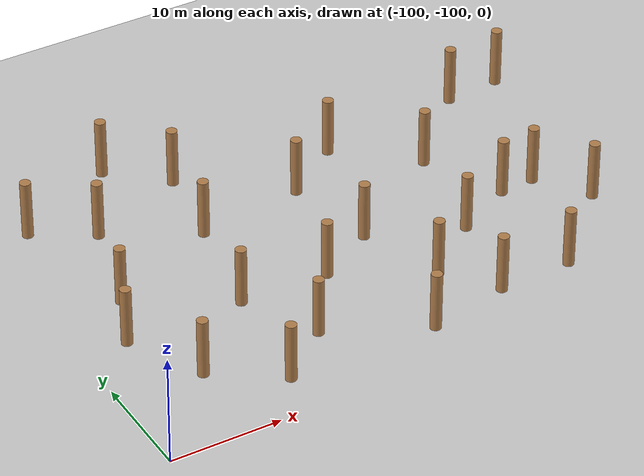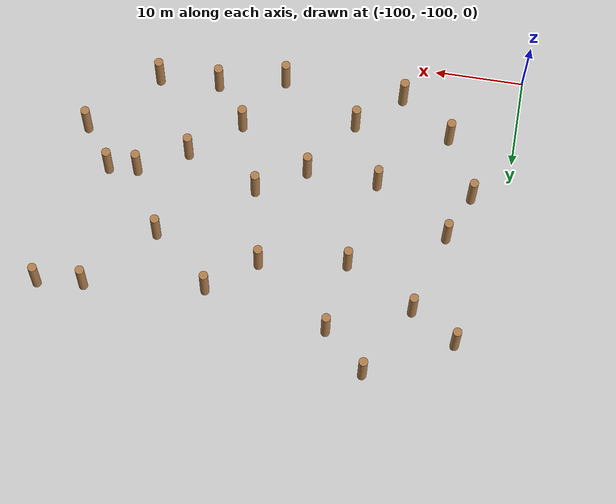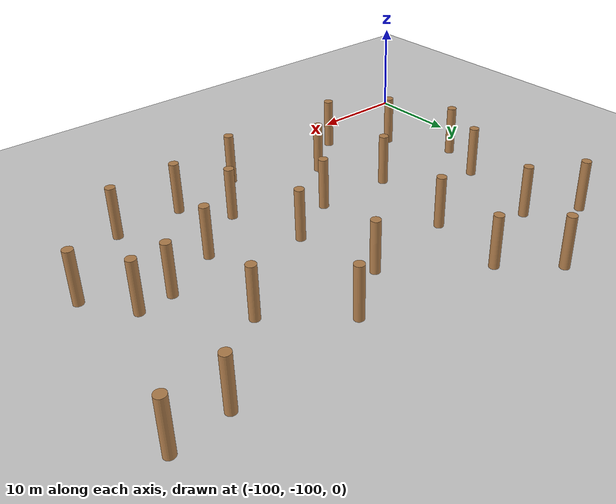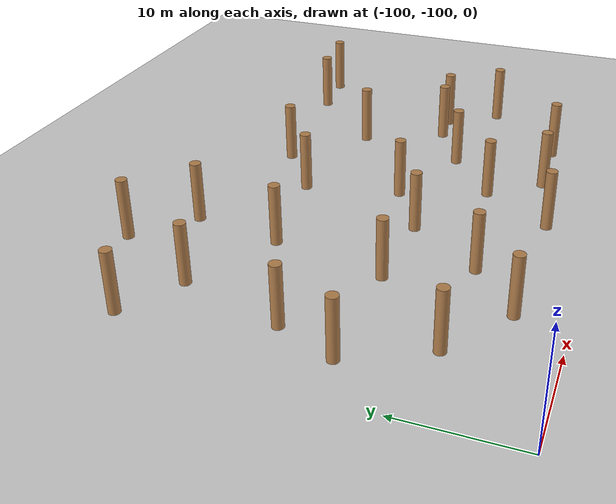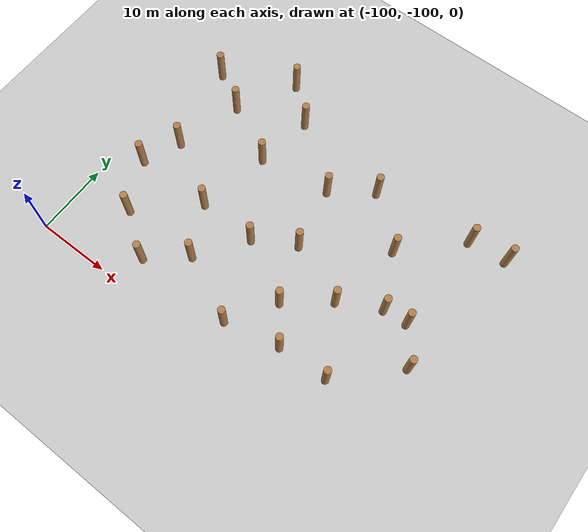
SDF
<sdf version="1.6">
 <world name="default">
  <model name="ground_plane">
   <static>1</static>
   <link name="link">
    <collision name="collision">
     <geometry><plane><normal>0 0 1</normal><size>100 100</size></plane></geometry>
     <surface><friction><ode><mu>100</mu><mu2>50</mu2></ode></friction></surface>
    </collision>
    <visual name="visual">
     <cast_shadows>0</cast_shadows>
     <geometry><plane><normal>0 0 1</normal><size>100 100</size></plane></geometry>
     <material>
      <script><uri>file://media/materials/scripts/gazebo.material</uri><name>Gazebo/Grey</name></script>
     </material>
    </visual>
   </link>
  </model>
  <model name="WoodPillars_11">
   <link name="link">
    <inertial>
     <mass>1</mass>
     <inertia><ixx>0.145833</ixx><ixy>0</ixy><ixz>0</ixz><iyy>0.145833</iyy><iyz>0</iyz><izz>0.125</izz></inertia>
    </inertial>
    <visual name="visual">
     <geometry><cylinder><radius>0.5</radius><length>5.50507</length></cylinder></geometry>
     <material>
      <script><name>Gazebo/Wood</name><uri>file://media/materials/scripts/gazebo.material</uri></script>
     </material>
    </visual>
    <collision name="collision">
     <geometry><cylinder><radius>0.5</radius><length>5.50507</length></cylinder></geometry>
     <surface>
      <friction>
       <ode><mu>1</mu><mu2>1</mu2><fdir1>0 0 0</fdir1><slip1>0</slip1><slip2>0</slip2></ode>
       <torsional>
        <coefficient>1</coefficient>
        <patch_radius>0</patch_radius>
        <surface_radius>0</surface_radius>
        <use_patch_radius>1</use_patch_radius>
        <ode><slip>0</slip></ode>
       </torsional>
      </friction>
      <bounce><restitution_coefficient>0</restitution_coefficient><threshold>1e+06</threshold></bounce>
      <contact>
       <collide_without_contact>0</collide_without_contact>
       <collide_without_contact_bitmask>1</collide_without_contact_bitmask>
       <collide_bitmask>1</collide_bitmask>
       <ode>
        <soft_cfm>0</soft_cfm>
        <soft_erp>0.2</soft_erp>
        <kp>1e+13</kp>
        <kd>1</kd>
        <max_vel>0.01</max_vel>
        <min_depth>0</min_depth>
       </ode>
       <bullet>
        <split_impulse>1</split_impulse>
        <split_impulse_penetration_threshold>-0.01</split_impulse_penetration_threshold>
        <soft_cfm>0</soft_cfm>
        <soft_erp>0.2</soft_erp>
        <kp>1e+13</kp>
        <kd>1</kd>
       </bullet>
      </contact>
     </surface>
    </collision>
   </link>
   <link name="link_clone">
    <inertial>
     <mass>1</mass>
     <inertia><ixx>0.145833</ixx><ixy>0</ixy><ixz>0</ixz><iyy>0.145833</iyy><iyz>0</iyz><izz>0.125</izz></inertia>
    </inertial>
    <pose>17.6954 -2.91348 -2e-06 0 -0 -0.001289</pose>
    <visual name="visual">
     <geometry><cylinder><radius>0.5</radius><length>5.50507</length></cylinder></geometry>
     <material>
      <script><name>Gazebo/Wood</name><uri>file://media/materials/scripts/gazebo.material</uri></script>
      <shader type="pixel"/>
     </material>
    </visual>
    <collision name="collision">
     <geometry><cylinder><radius>0.5</radius><length>5.50507</length></cylinder></geometry>
     <surface>
      <friction>
       <ode><mu>1</mu><mu2>1</mu2><fdir1>0 0 0</fdir1><slip1>0</slip1><slip2>0</slip2></ode>
       <torsional>
        <coefficient>1</coefficient>
        <patch_radius>0</patch_radius>
        <surface_radius>0</surface_radius>
        <use_patch_radius>1</use_patch_radius>
        <ode><slip>0</slip></ode>
       </torsional>
      </friction>
      <bounce><restitution_coefficient>0</restitution_coefficient><threshold>1e+06</threshold></bounce>
      <contact>
       <collide_without_contact>0</collide_without_contact>
       <collide_without_contact_bitmask>1</collide_without_contact_bitmask>
       <collide_bitmask>1</collide_bitmask>
       <ode>
        <soft_cfm>0</soft_cfm>
        <soft_erp>0.2</soft_erp>
        <kp>1e+13</kp>
        <kd>1</kd>
        <max_vel>0.01</max_vel>
        <min_depth>0</min_depth>
       </ode>
       <bullet>
        <split_impulse>1</split_impulse>
        <split_impulse_penetration_threshold>-0.01</split_impulse_penetration_threshold>
        <soft_cfm>0</soft_cfm>
        <soft_erp>0.2</soft_erp>
        <kp>1e+13</kp>
        <kd>1</kd>
       </bullet>
      </contact>
     </surface>
    </collision>
   </link>
   <link name="link_clone_12">
    <inertial>
     <mass>1</mass>
     <inertia><ixx>0.145833</ixx><ixy>0</ixy><ixz>0</ixz><iyy>0.145833</iyy><iyz>0</iyz><izz>0.125</izz></inertia>
    </inertial>
    <pose>36.6063 2.3916 -3e-06 0 -0 -0.001289</pose>
    <visual name="visual">
     <geometry><cylinder><radius>0.5</radius><length>5.50507</length></cylinder></geometry>
     <material>
      <script><name>Gazebo/Wood</name><uri>file://media/materials/scripts/gazebo.material</uri></script>
      <shader type="pixel"/>
     </material>
    </visual>
    <collision name="collision">
     <geometry><cylinder><radius>0.5</radius><length>5.50507</length></cylinder></geometry>
     <surface>
      <friction>
       <ode><mu>1</mu><mu2>1</mu2><fdir1>0 0 0</fdir1><slip1>0</slip1><slip2>0</slip2></ode>
       <torsional>
        <coefficient>1</coefficient>
        <patch_radius>0</patch_radius>
        <surface_radius>0</surface_radius>
        <use_patch_radius>1</use_patch_radius>
        <ode><slip>0</slip></ode>
       </torsional>
      </friction>
      <bounce><restitution_coefficient>0</restitution_coefficient><threshold>1e+06</threshold></bounce>
      <contact>
       <collide_without_contact>0</collide_without_contact>
       <collide_without_contact_bitmask>1</collide_without_contact_bitmask>
       <collide_bitmask>1</collide_bitmask>
       <ode>
        <soft_cfm>0</soft_cfm>
        <soft_erp>0.2</soft_erp>
        <kp>1e+13</kp>
        <kd>1</kd>
        <max_vel>0.01</max_vel>
        <min_depth>0</min_depth>
       </ode>
       <bullet>
        <split_impulse>1</split_impulse>
        <split_impulse_penetration_threshold>-0.01</split_impulse_penetration_threshold>
        <soft_cfm>0</soft_cfm>
        <soft_erp>0.2</soft_erp>
        <kp>1e+13</kp>
        <kd>1</kd>
       </bullet>
      </contact>
     </surface>
    </collision>
   </link>
   <link name="link_clone_13">
    <inertial>
     <mass>1</mass>
     <inertia><ixx>0.145833</ixx><ixy>0</ixy><ixz>0</ixz><iyy>0.145833</iyy><iyz>0</iyz><izz>0.125</izz></inertia>
    </inertial>
    <pose>32.2715 -23.3528 -3e-06 0 -0 -0.001289</pose>
    <visual name="visual">
     <geometry><cylinder><radius>0.5</radius><length>5.50507</length></cylinder></geometry>
     <material>
      <script><name>Gazebo/Wood</name><uri>file://media/materials/scripts/gazebo.material</uri></script>
      <shader type="pixel"/>
     </material>
    </visual>
    <collision name="collision">
     <geometry><cylinder><radius>0.5</radius><length>5.50507</length></cylinder></geometry>
     <surface>
      <friction>
       <ode><mu>1</mu><mu2>1</mu2><fdir1>0 0 0</fdir1><slip1>0</slip1><slip2>0</slip2></ode>
       <torsional>
        <coefficient>1</coefficient>
        <patch_radius>0</patch_radius>
        <surface_radius>0</surface_radius>
        <use_patch_radius>1</use_patch_radius>
        <ode><slip>0</slip></ode>
       </torsional>
      </friction>
      <bounce><restitution_coefficient>0</restitution_coefficient><threshold>1e+06</threshold></bounce>
      <contact>
       <collide_without_contact>0</collide_without_contact>
       <collide_without_contact_bitmask>1</collide_without_contact_bitmask>
       <collide_bitmask>1</collide_bitmask>
       <ode>
        <soft_cfm>0</soft_cfm>
        <soft_erp>0.2</soft_erp>
        <kp>1e+13</kp>
        <kd>1</kd>
        <max_vel>0.01</max_vel>
        <min_depth>0</min_depth>
       </ode>
       <bullet>
        <split_impulse>1</split_impulse>
        <split_impulse_penetration_threshold>-0.01</split_impulse_penetration_threshold>
        <soft_cfm>0</soft_cfm>
        <soft_erp>0.2</soft_erp>
        <kp>1e+13</kp>
        <kd>1</kd>
       </bullet>
      </contact>
     </surface>
    </collision>
   </link>
   <link name="link_clone_14">
    <inertial>
     <mass>1</mass>
     <inertia><ixx>0.145833</ixx><ixy>0</ixy><ixz>0</ixz><iyy>0.145833</iyy><iyz>0</iyz><izz>0.125</izz></inertia>
    </inertial>
    <pose>9.31461 -20.9997 -1e-06 0 -0 -0.001289</pose>
    <visual name="visual">
     <geometry><cylinder><radius>0.5</radius><length>5.50507</length></cylinder></geometry>
     <material>
      <script><name>Gazebo/Wood</name><uri>file://media/materials/scripts/gazebo.material</uri></script>
      <shader type="pixel"/>
     </material>
    </visual>
    <collision name="collision">
     <geometry><cylinder><radius>0.5</radius><length>5.50507</length></cylinder></geometry>
     <surface>
      <friction>
       <ode><mu>1</mu><mu2>1</mu2><fdir1>0 0 0</fdir1><slip1>0</slip1><slip2>0</slip2></ode>
       <torsional>
        <coefficient>1</coefficient>
        <patch_radius>0</patch_radius>
        <surface_radius>0</surface_radius>
        <use_patch_radius>1</use_patch_radius>
        <ode><slip>0</slip></ode>
       </torsional>
      </friction>
      <bounce><restitution_coefficient>0</restitution_coefficient><threshold>1e+06</threshold></bounce>
      <contact>
       <collide_without_contact>0</collide_without_contact>
       <collide_without_contact_bitmask>1</collide_without_contact_bitmask>
       <collide_bitmask>1</collide_bitmask>
       <ode>
        <soft_cfm>0</soft_cfm>
        <soft_erp>0.2</soft_erp>
        <kp>1e+13</kp>
        <kd>1</kd>
        <max_vel>0.01</max_vel>
        <min_depth>0</min_depth>
       </ode>
       <bullet>
        <split_impulse>1</split_impulse>
        <split_impulse_penetration_threshold>-0.01</split_impulse_penetration_threshold>
        <soft_cfm>0</soft_cfm>
        <soft_erp>0.2</soft_erp>
        <kp>1e+13</kp>
        <kd>1</kd>
       </bullet>
      </contact>
     </surface>
    </collision>
   </link>
   <link name="link_clone_15">
    <inertial>
     <mass>1</mass>
     <inertia><ixx>0.145833</ixx><ixy>0</ixy><ixz>0</ixz><iyy>0.145833</iyy><iyz>0</iyz><izz>0.125</izz></inertia>
    </inertial>
    <pose>17.9894 -25.1945 -2e-06 0 -0 -0.001289</pose>
    <visual name="visual">
     <geometry><cylinder><radius>0.5</radius><length>5.50507</length></cylinder></geometry>
     <material>
      <script><name>Gazebo/Wood</name><uri>file://media/materials/scripts/gazebo.material</uri></script>
      <shader type="pixel"/>
     </material>
    </visual>
    <collision name="collision">
     <geometry><cylinder><radius>0.5</radius><length>5.50507</length></cylinder></geometry>
     <surface>
      <friction>
       <ode><mu>1</mu><mu2>1</mu2><fdir1>0 0 0</fdir1><slip1>0</slip1><slip2>0</slip2></ode>
       <torsional>
        <coefficient>1</coefficient>
        <patch_radius>0</patch_radius>
        <surface_radius>0</surface_radius>
        <use_patch_radius>1</use_patch_radius>
        <ode><slip>0</slip></ode>
       </torsional>
      </friction>
      <bounce><restitution_coefficient>0</restitution_coefficient><threshold>1e+06</threshold></bounce>
      <contact>
       <collide_without_contact>0</collide_without_contact>
       <collide_without_contact_bitmask>1</collide_without_contact_bitmask>
       <collide_bitmask>1</collide_bitmask>
       <ode>
        <soft_cfm>0</soft_cfm>
        <soft_erp>0.2</soft_erp>
        <kp>1e+13</kp>
        <kd>1</kd>
        <max_vel>0.01</max_vel>
        <min_depth>0</min_depth>
       </ode>
       <bullet>
        <split_impulse>1</split_impulse>
        <split_impulse_penetration_threshold>-0.01</split_impulse_penetration_threshold>
        <soft_cfm>0</soft_cfm>
        <soft_erp>0.2</soft_erp>
        <kp>1e+13</kp>
        <kd>1</kd>
       </bullet>
      </contact>
     </surface>
    </collision>
   </link>
   <link name="link_clone_16">
    <inertial>
     <mass>1</mass>
     <inertia><ixx>0.145833</ixx><ixy>0</ixy><ixz>0</ixz><iyy>0.145833</iyy><iyz>0</iyz><izz>0.125</izz></inertia>
    </inertial>
    <pose>32.9662 -11.9429 -3e-06 0 -0 -0.001289</pose>
    <visual name="visual">
     <geometry><cylinder><radius>0.5</radius><length>5.50507</length></cylinder></geometry>
     <material>
      <script><name>Gazebo/Wood</name><uri>file://media/materials/scripts/gazebo.material</uri></script>
      <shader type="pixel"/>
     </material>
    </visual>
    <collision name="collision">
     <geometry><cylinder><radius>0.5</radius><length>5.50507</length></cylinder></geometry>
     <surface>
      <friction>
       <ode><mu>1</mu><mu2>1</mu2><fdir1>0 0 0</fdir1><slip1>0</slip1><slip2>0</slip2></ode>
       <torsional>
        <coefficient>1</coefficient>
        <patch_radius>0</patch_radius>
        <surface_radius>0</surface_radius>
        <use_patch_radius>1</use_patch_radius>
        <ode><slip>0</slip></ode>
       </torsional>
      </friction>
      <bounce><restitution_coefficient>0</restitution_coefficient><threshold>1e+06</threshold></bounce>
      <contact>
       <collide_without_contact>0</collide_without_contact>
       <collide_without_contact_bitmask>1</collide_without_contact_bitmask>
       <collide_bitmask>1</collide_bitmask>
       <ode>
        <soft_cfm>0</soft_cfm>
        <soft_erp>0.2</soft_erp>
        <kp>1e+13</kp>
        <kd>1</kd>
        <max_vel>0.01</max_vel>
        <min_depth>0</min_depth>
       </ode>
       <bullet>
        <split_impulse>1</split_impulse>
        <split_impulse_penetration_threshold>-0.01</split_impulse_penetration_threshold>
        <soft_cfm>0</soft_cfm>
        <soft_erp>0.2</soft_erp>
        <kp>1e+13</kp>
        <kd>1</kd>
       </bullet>
      </contact>
     </surface>
    </collision>
   </link>
   <link name="link_clone_17">
    <inertial>
     <mass>1</mass>
     <inertia><ixx>0.145833</ixx><ixy>0</ixy><ixz>0</ixz><iyy>0.145833</iyy><iyz>0</iyz><izz>0.125</izz></inertia>
    </inertial>
    <pose>19.3784 -11.4604 -2e-06 0 -0 -0.001289</pose>
    <visual name="visual">
     <geometry><cylinder><radius>0.5</radius><length>5.50507</length></cylinder></geometry>
     <material>
      <script><name>Gazebo/Wood</name><uri>file://media/materials/scripts/gazebo.material</uri></script>
      <shader type="pixel"/>
     </material>
    </visual>
    <collision name="collision">
     <geometry><cylinder><radius>0.5</radius><length>5.50507</length></cylinder></geometry>
     <surface>
      <friction>
       <ode><mu>1</mu><mu2>1</mu2><fdir1>0 0 0</fdir1><slip1>0</slip1><slip2>0</slip2></ode>
       <torsional>
        <coefficient>1</coefficient>
        <patch_radius>0</patch_radius>
        <surface_radius>0</surface_radius>
        <use_patch_radius>1</use_patch_radius>
        <ode><slip>0</slip></ode>
       </torsional>
      </friction>
      <bounce><restitution_coefficient>0</restitution_coefficient><threshold>1e+06</threshold></bounce>
      <contact>
       <collide_without_contact>0</collide_without_contact>
       <collide_without_contact_bitmask>1</collide_without_contact_bitmask>
       <collide_bitmask>1</collide_bitmask>
       <ode>
        <soft_cfm>0</soft_cfm>
        <soft_erp>0.2</soft_erp>
        <kp>1e+13</kp>
        <kd>1</kd>
        <max_vel>0.01</max_vel>
        <min_depth>0</min_depth>
       </ode>
       <bullet>
        <split_impulse>1</split_impulse>
        <split_impulse_penetration_threshold>-0.01</split_impulse_penetration_threshold>
        <soft_cfm>0</soft_cfm>
        <soft_erp>0.2</soft_erp>
        <kp>1e+13</kp>
        <kd>1</kd>
       </bullet>
      </contact>
     </surface>
    </collision>
   </link>
   <link name="link_clone_18">
    <inertial>
     <mass>1</mass>
     <inertia><ixx>0.145833</ixx><ixy>0</ixy><ixz>0</ixz><iyy>0.145833</iyy><iyz>0</iyz><izz>0.125</izz></inertia>
    </inertial>
    <pose>9.1573 3.67739 -1e-06 0 -0 -0.001289</pose>
    <visual name="visual">
     <geometry><cylinder><radius>0.5</radius><length>5.50507</length></cylinder></geometry>
     <material>
      <script><name>Gazebo/Wood</name><uri>file://media/materials/scripts/gazebo.material</uri></script>
      <shader type="pixel"/>
     </material>
    </visual>
    <collision name="collision">
     <geometry><cylinder><radius>0.5</radius><length>5.50507</length></cylinder></geometry>
     <surface>
      <friction>
       <ode><mu>1</mu><mu2>1</mu2><fdir1>0 0 0</fdir1><slip1>0</slip1><slip2>0</slip2></ode>
       <torsional>
        <coefficient>1</coefficient>
        <patch_radius>0</patch_radius>
        <surface_radius>0</surface_radius>
        <use_patch_radius>1</use_patch_radius>
        <ode><slip>0</slip></ode>
       </torsional>
      </friction>
      <bounce><restitution_coefficient>0</restitution_coefficient><threshold>1e+06</threshold></bounce>
      <contact>
       <collide_without_contact>0</collide_without_contact>
       <collide_without_contact_bitmask>1</collide_without_contact_bitmask>
       <collide_bitmask>1</collide_bitmask>
       <ode>
        <soft_cfm>0</soft_cfm>
        <soft_erp>0.2</soft_erp>
        <kp>1e+13</kp>
        <kd>1</kd>
        <max_vel>0.01</max_vel>
        <min_depth>0</min_depth>
       </ode>
       <bullet>
        <split_impulse>1</split_impulse>
        <split_impulse_penetration_threshold>-0.01</split_impulse_penetration_threshold>
        <soft_cfm>0</soft_cfm>
        <soft_erp>0.2</soft_erp>
        <kp>1e+13</kp>
        <kd>1</kd>
       </bullet>
      </contact>
     </surface>
    </collision>
   </link>
   <link name="link_clone_20">
    <inertial>
     <mass>1</mass>
     <inertia><ixx>0.145833</ixx><ixy>0</ixy><ixz>0</ixz><iyy>0.145833</iyy><iyz>0</iyz><izz>0.125</izz></inertia>
    </inertial>
    <pose>-2.64423 -9.12396 -0 0 -0 -0.001289</pose>
    <visual name="visual">
     <geometry><cylinder><radius>0.5</radius><length>5.50507</length></cylinder></geometry>
     <material>
      <script><name>Gazebo/Wood</name><uri>file://media/materials/scripts/gazebo.material</uri></script>
      <shader type="pixel"/>
     </material>
    </visual>
    <collision name="collision">
     <geometry><cylinder><radius>0.5</radius><length>5.50507</length></cylinder></geometry>
     <surface>
      <friction>
       <ode><mu>1</mu><mu2>1</mu2><fdir1>0 0 0</fdir1><slip1>0</slip1><slip2>0</slip2></ode>
       <torsional>
        <coefficient>1</coefficient>
        <patch_radius>0</patch_radius>
        <surface_radius>0</surface_radius>
        <use_patch_radius>1</use_patch_radius>
        <ode><slip>0</slip></ode>
       </torsional>
      </friction>
      <bounce><restitution_coefficient>0</restitution_coefficient><threshold>1e+06</threshold></bounce>
      <contact>
       <collide_without_contact>0</collide_without_contact>
       <collide_without_contact_bitmask>1</collide_without_contact_bitmask>
       <collide_bitmask>1</collide_bitmask>
       <ode>
        <soft_cfm>0</soft_cfm>
        <soft_erp>0.2</soft_erp>
        <kp>1e+13</kp>
        <kd>1</kd>
        <max_vel>0.01</max_vel>
        <min_depth>0</min_depth>
       </ode>
       <bullet>
        <split_impulse>1</split_impulse>
        <split_impulse_penetration_threshold>-0.01</split_impulse_penetration_threshold>
        <soft_cfm>0</soft_cfm>
        <soft_erp>0.2</soft_erp>
        <kp>1e+13</kp>
        <kd>1</kd>
       </bullet>
      </contact>
     </surface>
    </collision>
   </link>
   <link name="link_clone_23">
    <inertial>
     <mass>1</mass>
     <inertia><ixx>0.145833</ixx><ixy>0</ixy><ixz>0</ixz><iyy>0.145833</iyy><iyz>0</iyz><izz>0.125</izz></inertia>
    </inertial>
    <pose>29.5176 -4.71623 -3e-06 0 -0 -0.001289</pose>
    <visual name="visual">
     <geometry><cylinder><radius>0.5</radius><length>5.50507</length></cylinder></geometry>
     <material>
      <script><name>Gazebo/Wood</name><uri>file://media/materials/scripts/gazebo.material</uri></script>
      <shader type="pixel"/>
     </material>
    </visual>
    <collision name="collision">
     <geometry><cylinder><radius>0.5</radius><length>5.50507</length></cylinder></geometry>
     <surface>
      <friction>
       <ode><mu>1</mu><mu2>1</mu2><fdir1>0 0 0</fdir1><slip1>0</slip1><slip2>0</slip2></ode>
       <torsional>
        <coefficient>1</coefficient>
        <patch_radius>0</patch_radius>
        <surface_radius>0</surface_radius>
        <use_patch_radius>1</use_patch_radius>
        <ode><slip>0</slip></ode>
       </torsional>
      </friction>
      <bounce><restitution_coefficient>0</restitution_coefficient><threshold>1e+06</threshold></bounce>
      <contact>
       <collide_without_contact>0</collide_without_contact>
       <collide_without_contact_bitmask>1</collide_without_contact_bitmask>
       <collide_bitmask>1</collide_bitmask>
       <ode>
        <soft_cfm>0</soft_cfm>
        <soft_erp>0.2</soft_erp>
        <kp>1e+13</kp>
        <kd>1</kd>
        <max_vel>0.01</max_vel>
        <min_depth>0</min_depth>
       </ode>
       <bullet>
        <split_impulse>1</split_impulse>
        <split_impulse_penetration_threshold>-0.01</split_impulse_penetration_threshold>
        <soft_cfm>0</soft_cfm>
        <soft_erp>0.2</soft_erp>
        <kp>1e+13</kp>
        <kd>1</kd>
       </bullet>
      </contact>
     </surface>
    </collision>
   </link>
   <link name="link_clone_24">
    <inertial>
     <mass>1</mass>
     <inertia><ixx>0.145833</ixx><ixy>0</ixy><ixz>0</ixz><iyy>0.145833</iyy><iyz>0</iyz><izz>0.125</izz></inertia>
    </inertial>
    <pose>7.84688 -4.26113 -1e-06 0 -0 -0.001289</pose>
    <visual name="visual">
     <geometry><cylinder><radius>0.5</radius><length>5.50507</length></cylinder></geometry>
     <material>
      <script><name>Gazebo/Wood</name><uri>file://media/materials/scripts/gazebo.material</uri></script>
      <shader type="pixel"/>
     </material>
    </visual>
    <collision name="collision">
     <geometry><cylinder><radius>0.5</radius><length>5.50507</length></cylinder></geometry>
     <surface>
      <friction>
       <ode><mu>1</mu><mu2>1</mu2><fdir1>0 0 0</fdir1><slip1>0</slip1><slip2>0</slip2></ode>
       <torsional>
        <coefficient>1</coefficient>
        <patch_radius>0</patch_radius>
        <surface_radius>0</surface_radius>
        <use_patch_radius>1</use_patch_radius>
        <ode><slip>0</slip></ode>
       </torsional>
      </friction>
      <bounce><restitution_coefficient>0</restitution_coefficient><threshold>1e+06</threshold></bounce>
      <contact>
       <collide_without_contact>0</collide_without_contact>
       <collide_without_contact_bitmask>1</collide_without_contact_bitmask>
       <collide_bitmask>1</collide_bitmask>
       <ode>
        <soft_cfm>0</soft_cfm>
        <soft_erp>0.2</soft_erp>
        <kp>1e+13</kp>
        <kd>1</kd>
        <max_vel>0.01</max_vel>
        <min_depth>0</min_depth>
       </ode>
       <bullet>
        <split_impulse>1</split_impulse>
        <split_impulse_penetration_threshold>-0.01</split_impulse_penetration_threshold>
        <soft_cfm>0</soft_cfm>
        <soft_erp>0.2</soft_erp>
        <kp>1e+13</kp>
        <kd>1</kd>
       </bullet>
      </contact>
     </surface>
    </collision>
   </link>
   <link name="link_clone_26">
    <inertial>
     <mass>1</mass>
     <inertia><ixx>0.145833</ixx><ixy>0</ixy><ixz>0</ixz><iyy>0.145833</iyy><iyz>0</iyz><izz>0.125</izz></inertia>
    </inertial>
    <pose>13.9187 -14.5508 -1e-06 0 -0 -0.001289</pose>
    <visual name="visual">
     <geometry><cylinder><radius>0.5</radius><length>5.50507</length></cylinder></geometry>
     <material>
      <script><name>Gazebo/Wood</name><uri>file://media/materials/scripts/gazebo.material</uri></script>
      <shader type="pixel"/>
     </material>
    </visual>
    <collision name="collision">
     <geometry><cylinder><radius>0.5</radius><length>5.50507</length></cylinder></geometry>
     <surface>
      <friction>
       <ode><mu>1</mu><mu2>1</mu2><fdir1>0 0 0</fdir1><slip1>0</slip1><slip2>0</slip2></ode>
       <torsional>
        <coefficient>1</coefficient>
        <patch_radius>0</patch_radius>
        <surface_radius>0</surface_radius>
        <use_patch_radius>1</use_patch_radius>
        <ode><slip>0</slip></ode>
       </torsional>
      </friction>
      <bounce><restitution_coefficient>0</restitution_coefficient><threshold>1e+06</threshold></bounce>
      <contact>
       <collide_without_contact>0</collide_without_contact>
       <collide_without_contact_bitmask>1</collide_without_contact_bitmask>
       <collide_bitmask>1</collide_bitmask>
       <ode>
        <soft_cfm>0</soft_cfm>
        <soft_erp>0.2</soft_erp>
        <kp>1e+13</kp>
        <kd>1</kd>
        <max_vel>0.01</max_vel>
        <min_depth>0</min_depth>
       </ode>
       <bullet>
        <split_impulse>1</split_impulse>
        <split_impulse_penetration_threshold>-0.01</split_impulse_penetration_threshold>
        <soft_cfm>0</soft_cfm>
        <soft_erp>0.2</soft_erp>
        <kp>1e+13</kp>
        <kd>1</kd>
       </bullet>
      </contact>
     </surface>
    </collision>
   </link>
   <link name="link_clone_27">
    <inertial>
     <mass>1</mass>
     <inertia><ixx>0.145833</ixx><ixy>0</ixy><ixz>0</ixz><iyy>0.145833</iyy><iyz>0</iyz><izz>0.125</izz></inertia>
    </inertial>
    <pose>4.38632 -25.0605 -1e-06 0 -0 -0.001289</pose>
    <visual name="visual">
     <geometry><cylinder><radius>0.5</radius><length>5.50507</length></cylinder></geometry>
     <material>
      <script><name>Gazebo/Wood</name><uri>file://media/materials/scripts/gazebo.material</uri></script>
      <shader type="pixel"/>
     </material>
    </visual>
    <collision name="collision">
     <geometry><cylinder><radius>0.5</radius><length>5.50507</length></cylinder></geometry>
     <surface>
      <friction>
       <ode><mu>1</mu><mu2>1</mu2><fdir1>0 0 0</fdir1><slip1>0</slip1><slip2>0</slip2></ode>
       <torsional>
        <coefficient>1</coefficient>
        <patch_radius>0</patch_radius>
        <surface_radius>0</surface_radius>
        <use_patch_radius>1</use_patch_radius>
        <ode><slip>0</slip></ode>
       </torsional>
      </friction>
      <bounce><restitution_coefficient>0</restitution_coefficient><threshold>1e+06</threshold></bounce>
      <contact>
       <collide_without_contact>0</collide_without_contact>
       <collide_without_contact_bitmask>1</collide_without_contact_bitmask>
       <collide_bitmask>1</collide_bitmask>
       <ode>
        <soft_cfm>0</soft_cfm>
        <soft_erp>0.2</soft_erp>
        <kp>1e+13</kp>
        <kd>1</kd>
        <max_vel>0.01</max_vel>
        <min_depth>0</min_depth>
       </ode>
       <bullet>
        <split_impulse>1</split_impulse>
        <split_impulse_penetration_threshold>-0.01</split_impulse_penetration_threshold>
        <soft_cfm>0</soft_cfm>
        <soft_erp>0.2</soft_erp>
        <kp>1e+13</kp>
        <kd>1</kd>
       </bullet>
      </contact>
     </surface>
    </collision>
   </link>
   <link name="link_clone_28">
    <inertial>
     <mass>1</mass>
     <inertia><ixx>0.145833</ixx><ixy>0</ixy><ixz>0</ixz><iyy>0.145833</iyy><iyz>0</iyz><izz>0.125</izz></inertia>
    </inertial>
    <pose>27.5353 -14.766 -3e-06 0 -0 -0.001289</pose>
    <visual name="visual">
     <geometry><cylinder><radius>0.5</radius><length>5.50507</length></cylinder></geometry>
     <material>
      <script><name>Gazebo/Wood</name><uri>file://media/materials/scripts/gazebo.material</uri></script>
      <shader type="pixel"/>
     </material>
    </visual>
    <collision name="collision">
     <geometry><cylinder><radius>0.5</radius><length>5.50507</length></cylinder></geometry>
     <surface>
      <friction>
       <ode><mu>1</mu><mu2>1</mu2><fdir1>0 0 0</fdir1><slip1>0</slip1><slip2>0</slip2></ode>
       <torsional>
        <coefficient>1</coefficient>
        <patch_radius>0</patch_radius>
        <surface_radius>0</surface_radius>
        <use_patch_radius>1</use_patch_radius>
        <ode><slip>0</slip></ode>
       </torsional>
      </friction>
      <bounce><restitution_coefficient>0</restitution_coefficient><threshold>1e+06</threshold></bounce>
      <contact>
       <collide_without_contact>0</collide_without_contact>
       <collide_without_contact_bitmask>1</collide_without_contact_bitmask>
       <collide_bitmask>1</collide_bitmask>
       <ode>
        <soft_cfm>0</soft_cfm>
        <soft_erp>0.2</soft_erp>
        <kp>1e+13</kp>
        <kd>1</kd>
        <max_vel>0.01</max_vel>
        <min_depth>0</min_depth>
       </ode>
       <bullet>
        <split_impulse>1</split_impulse>
        <split_impulse_penetration_threshold>-0.01</split_impulse_penetration_threshold>
        <soft_cfm>0</soft_cfm>
        <soft_erp>0.2</soft_erp>
        <kp>1e+13</kp>
        <kd>1</kd>
       </bullet>
      </contact>
     </surface>
    </collision>
   </link>
   <link name="link_clone_29">
    <inertial>
     <mass>1</mass>
     <inertia><ixx>0.145833</ixx><ixy>0</ixy><ixz>0</ixz><iyy>0.145833</iyy><iyz>0</iyz><izz>0.125</izz></inertia>
    </inertial>
    <pose>39.4401 -16.2696 -4e-06 0 -0 -0.001289</pose>
    <visual name="visual">
     <geometry><cylinder><radius>0.5</radius><length>5.50507</length></cylinder></geometry>
     <material>
      <script><name>Gazebo/Wood</name><uri>file://media/materials/scripts/gazebo.material</uri></script>
      <shader type="pixel"/>
     </material>
    </visual>
    <collision name="collision">
     <geometry><cylinder><radius>0.5</radius><length>5.50507</length></cylinder></geometry>
     <surface>
      <friction>
       <ode><mu>1</mu><mu2>1</mu2><fdir1>0 0 0</fdir1><slip1>0</slip1><slip2>0</slip2></ode>
       <torsional>
        <coefficient>1</coefficient>
        <patch_radius>0</patch_radius>
        <surface_radius>0</surface_radius>
        <use_patch_radius>1</use_patch_radius>
        <ode><slip>0</slip></ode>
       </torsional>
      </friction>
      <bounce><restitution_coefficient>0</restitution_coefficient><threshold>1e+06</threshold></bounce>
      <contact>
       <collide_without_contact>0</collide_without_contact>
       <collide_without_contact_bitmask>1</collide_without_contact_bitmask>
       <collide_bitmask>1</collide_bitmask>
       <ode>
        <soft_cfm>0</soft_cfm>
        <soft_erp>0.2</soft_erp>
        <kp>1e+13</kp>
        <kd>1</kd>
        <max_vel>0.01</max_vel>
        <min_depth>0</min_depth>
       </ode>
       <bullet>
        <split_impulse>1</split_impulse>
        <split_impulse_penetration_threshold>-0.01</split_impulse_penetration_threshold>
        <soft_cfm>0</soft_cfm>
        <soft_erp>0.2</soft_erp>
        <kp>1e+13</kp>
        <kd>1</kd>
       </bullet>
      </contact>
     </surface>
    </collision>
   </link>
   <link name="link_clone_30">
    <inertial>
     <mass>1</mass>
     <inertia><ixx>0.145833</ixx><ixy>0</ixy><ixz>0</ixz><iyy>0.145833</iyy><iyz>0</iyz><izz>0.125</izz></inertia>
    </inertial>
    <pose>4.46339 7.97492 0 0 -0 -0.001289</pose>
    <visual name="visual">
     <geometry><cylinder><radius>0.5</radius><length>5.50507</length></cylinder></geometry>
     <material>
      <script><name>Gazebo/Wood</name><uri>file://media/materials/scripts/gazebo.material</uri></script>
      <shader type="pixel"/>
     </material>
    </visual>
    <collision name="collision">
     <geometry><cylinder><radius>0.5</radius><length>5.50507</length></cylinder></geometry>
     <surface>
      <friction>
       <ode><mu>1</mu><mu2>1</mu2><fdir1>0 0 0</fdir1><slip1>0</slip1><slip2>0</slip2></ode>
       <torsional>
        <coefficient>1</coefficient>
        <patch_radius>0</patch_radius>
        <surface_radius>0</surface_radius>
        <use_patch_radius>1</use_patch_radius>
        <ode><slip>0</slip></ode>
       </torsional>
      </friction>
      <bounce><restitution_coefficient>0</restitution_coefficient><threshold>1e+06</threshold></bounce>
      <contact>
       <collide_without_contact>0</collide_without_contact>
       <collide_without_contact_bitmask>1</collide_without_contact_bitmask>
       <collide_bitmask>1</collide_bitmask>
       <ode>
        <soft_cfm>0</soft_cfm>
        <soft_erp>0.2</soft_erp>
        <kp>1e+13</kp>
        <kd>1</kd>
        <max_vel>0.01</max_vel>
        <min_depth>0</min_depth>
       </ode>
       <bullet>
        <split_impulse>1</split_impulse>
        <split_impulse_penetration_threshold>-0.01</split_impulse_penetration_threshold>
        <soft_cfm>0</soft_cfm>
        <soft_erp>0.2</soft_erp>
        <kp>1e+13</kp>
        <kd>1</kd>
       </bullet>
      </contact>
     </surface>
    </collision>
   </link>
   <link name="link_clone_32">
    <inertial>
     <mass>1</mass>
     <inertia><ixx>0.145833</ixx><ixy>0</ixy><ixz>0</ixz><iyy>0.145833</iyy><iyz>0</iyz><izz>0.125</izz></inertia>
    </inertial>
    <pose>-4.82669 -14.2698 -0 0 -0 -0.001289</pose>
    <visual name="visual">
     <geometry><cylinder><radius>0.5</radius><length>5.50507</length></cylinder></geometry>
     <material>
      <script><name>Gazebo/Wood</name><uri>file://media/materials/scripts/gazebo.material</uri></script>
      <shader type="pixel"/>
     </material>
    </visual>
    <collision name="collision">
     <geometry><cylinder><radius>0.5</radius><length>5.50507</length></cylinder></geometry>
     <surface>
      <friction>
       <ode><mu>1</mu><mu2>1</mu2><fdir1>0 0 0</fdir1><slip1>0</slip1><slip2>0</slip2></ode>
       <torsional>
        <coefficient>1</coefficient>
        <patch_radius>0</patch_radius>
        <surface_radius>0</surface_radius>
        <use_patch_radius>1</use_patch_radius>
        <ode><slip>0</slip></ode>
       </torsional>
      </friction>
      <bounce><restitution_coefficient>0</restitution_coefficient><threshold>1e+06</threshold></bounce>
      <contact>
       <collide_without_contact>0</collide_without_contact>
       <collide_without_contact_bitmask>1</collide_without_contact_bitmask>
       <collide_bitmask>1</collide_bitmask>
       <ode>
        <soft_cfm>0</soft_cfm>
        <soft_erp>0.2</soft_erp>
        <kp>1e+13</kp>
        <kd>1</kd>
        <max_vel>0.01</max_vel>
        <min_depth>0</min_depth>
       </ode>
       <bullet>
        <split_impulse>1</split_impulse>
        <split_impulse_penetration_threshold>-0.01</split_impulse_penetration_threshold>
        <soft_cfm>0</soft_cfm>
        <soft_erp>0.2</soft_erp>
        <kp>1e+13</kp>
        <kd>1</kd>
       </bullet>
      </contact>
     </surface>
    </collision>
   </link>
   <link name="link_clone_34">
    <inertial>
     <mass>1</mass>
     <inertia><ixx>0.145833</ixx><ixy>0</ixy><ixz>0</ixz><iyy>0.145833</iyy><iyz>0</iyz><izz>0.125</izz></inertia>
    </inertial>
    <pose>25.4673 -23.5908 -3e-06 0 -0 -0.001289</pose>
    <visual name="visual">
     <geometry><cylinder><radius>0.5</radius><length>5.50507</length></cylinder></geometry>
     <material>
      <script><name>Gazebo/Wood</name><uri>file://media/materials/scripts/gazebo.material</uri></script>
      <shader type="pixel"/>
     </material>
    </visual>
    <collision name="collision">
     <geometry><cylinder><radius>0.5</radius><length>5.50507</length></cylinder></geometry>
     <surface>
      <friction>
       <ode><mu>1</mu><mu2>1</mu2><fdir1>0 0 0</fdir1><slip1>0</slip1><slip2>0</slip2></ode>
       <torsional>
        <coefficient>1</coefficient>
        <patch_radius>0</patch_radius>
        <surface_radius>0</surface_radius>
        <use_patch_radius>1</use_patch_radius>
        <ode><slip>0</slip></ode>
       </torsional>
      </friction>
      <bounce><restitution_coefficient>0</restitution_coefficient><threshold>1e+06</threshold></bounce>
      <contact>
       <collide_without_contact>0</collide_without_contact>
       <collide_without_contact_bitmask>1</collide_without_contact_bitmask>
       <collide_bitmask>1</collide_bitmask>
       <ode>
        <soft_cfm>0</soft_cfm>
        <soft_erp>0.2</soft_erp>
        <kp>1e+13</kp>
        <kd>1</kd>
        <max_vel>0.01</max_vel>
        <min_depth>0</min_depth>
       </ode>
       <bullet>
        <split_impulse>1</split_impulse>
        <split_impulse_penetration_threshold>-0.01</split_impulse_penetration_threshold>
        <soft_cfm>0</soft_cfm>
        <soft_erp>0.2</soft_erp>
        <kp>1e+13</kp>
        <kd>1</kd>
       </bullet>
      </contact>
     </surface>
    </collision>
   </link>
   <link name="link_clone_35">
    <inertial>
     <mass>1</mass>
     <inertia><ixx>0.145833</ixx><ixy>0</ixy><ixz>0</ixz><iyy>0.145833</iyy><iyz>0</iyz><izz>0.125</izz></inertia>
    </inertial>
    <pose>-5.14728 3.10998 -0 0 -0 -0.001289</pose>
    <visual name="visual">
     <geometry><cylinder><radius>0.5</radius><length>5.50507</length></cylinder></geometry>
     <material>
      <script><name>Gazebo/Wood</name><uri>file://media/materials/scripts/gazebo.material</uri></script>
      <shader type="pixel"/>
     </material>
    </visual>
    <collision name="collision">
     <geometry><cylinder><radius>0.5</radius><length>5.50507</length></cylinder></geometry>
     <surface>
      <friction>
       <ode><mu>1</mu><mu2>1</mu2><fdir1>0 0 0</fdir1><slip1>0</slip1><slip2>0</slip2></ode>
       <torsional>
        <coefficient>1</coefficient>
        <patch_radius>0</patch_radius>
        <surface_radius>0</surface_radius>
        <use_patch_radius>1</use_patch_radius>
        <ode><slip>0</slip></ode>
       </torsional>
      </friction>
      <bounce><restitution_coefficient>0</restitution_coefficient><threshold>1e+06</threshold></bounce>
      <contact>
       <collide_without_contact>0</collide_without_contact>
       <collide_without_contact_bitmask>1</collide_without_contact_bitmask>
       <collide_bitmask>1</collide_bitmask>
       <ode>
        <soft_cfm>0</soft_cfm>
        <soft_erp>0.2</soft_erp>
        <kp>1e+13</kp>
        <kd>1</kd>
        <max_vel>0.01</max_vel>
        <min_depth>0</min_depth>
       </ode>
       <bullet>
        <split_impulse>1</split_impulse>
        <split_impulse_penetration_threshold>-0.01</split_impulse_penetration_threshold>
        <soft_cfm>0</soft_cfm>
        <soft_erp>0.2</soft_erp>
        <kp>1e+13</kp>
        <kd>1</kd>
       </bullet>
      </contact>
     </surface>
    </collision>
   </link>
   <link name="link_clone_4">
    <inertial>
     <mass>1</mass>
     <inertia><ixx>0.145833</ixx><ixy>0</ixy><ixz>0</ixz><iyy>0.145833</iyy><iyz>0</iyz><izz>0.125</izz></inertia>
    </inertial>
    <pose>23.1128 0.93751 -2e-06 0 -0 -0.001289</pose>
    <visual name="visual">
     <geometry><cylinder><radius>0.5</radius><length>5.50507</length></cylinder></geometry>
     <material>
      <script><name>Gazebo/Wood</name><uri>file://media/materials/scripts/gazebo.material</uri></script>
      <shader type="pixel"/>
     </material>
    </visual>
    <collision name="collision">
     <geometry><cylinder><radius>0.5</radius><length>5.50507</length></cylinder></geometry>
     <surface>
      <friction>
       <ode><mu>1</mu><mu2>1</mu2><fdir1>0 0 0</fdir1><slip1>0</slip1><slip2>0</slip2></ode>
       <torsional>
        <coefficient>1</coefficient>
        <patch_radius>0</patch_radius>
        <surface_radius>0</surface_radius>
        <use_patch_radius>1</use_patch_radius>
        <ode><slip>0</slip></ode>
       </torsional>
      </friction>
      <bounce><restitution_coefficient>0</restitution_coefficient><threshold>1e+06</threshold></bounce>
      <contact>
       <collide_without_contact>0</collide_without_contact>
       <collide_without_contact_bitmask>1</collide_without_contact_bitmask>
       <collide_bitmask>1</collide_bitmask>
       <ode>
        <soft_cfm>0</soft_cfm>
        <soft_erp>0.2</soft_erp>
        <kp>1e+13</kp>
        <kd>1</kd>
        <max_vel>0.01</max_vel>
        <min_depth>0</min_depth>
       </ode>
       <bullet>
        <split_impulse>1</split_impulse>
        <split_impulse_penetration_threshold>-0.01</split_impulse_penetration_threshold>
        <soft_cfm>0</soft_cfm>
        <soft_erp>0.2</soft_erp>
        <kp>1e+13</kp>
        <kd>1</kd>
       </bullet>
      </contact>
     </surface>
    </collision>
   </link>
   <link name="link_clone_6">
    <inertial>
     <mass>1</mass>
     <inertia><ixx>0.145833</ixx><ixy>0</ixy><ixz>0</ixz><iyy>0.145833</iyy><iyz>0</iyz><izz>0.125</izz></inertia>
    </inertial>
    <pose>36.2258 -11.6926 -3e-06 0 -0 -0.001289</pose>
    <visual name="visual">
     <geometry><cylinder><radius>0.5</radius><length>5.50507</length></cylinder></geometry>
     <material>
      <script><name>Gazebo/Wood</name><uri>file://media/materials/scripts/gazebo.material</uri></script>
      <shader type="pixel"/>
     </material>
    </visual>
    <collision name="collision">
     <geometry><cylinder><radius>0.5</radius><length>5.50507</length></cylinder></geometry>
     <surface>
      <friction>
       <ode><mu>1</mu><mu2>1</mu2><fdir1>0 0 0</fdir1><slip1>0</slip1><slip2>0</slip2></ode>
       <torsional>
        <coefficient>1</coefficient>
        <patch_radius>0</patch_radius>
        <surface_radius>0</surface_radius>
        <use_patch_radius>1</use_patch_radius>
        <ode><slip>0</slip></ode>
       </torsional>
      </friction>
      <bounce><restitution_coefficient>0</restitution_coefficient><threshold>1e+06</threshold></bounce>
      <contact>
       <collide_without_contact>0</collide_without_contact>
       <collide_without_contact_bitmask>1</collide_without_contact_bitmask>
       <collide_bitmask>1</collide_bitmask>
       <ode>
        <soft_cfm>0</soft_cfm>
        <soft_erp>0.2</soft_erp>
        <kp>1e+13</kp>
        <kd>1</kd>
        <max_vel>0.01</max_vel>
        <min_depth>0</min_depth>
       </ode>
       <bullet>
        <split_impulse>1</split_impulse>
        <split_impulse_penetration_threshold>-0.01</split_impulse_penetration_threshold>
        <soft_cfm>0</soft_cfm>
        <soft_erp>0.2</soft_erp>
        <kp>1e+13</kp>
        <kd>1</kd>
       </bullet>
      </contact>
     </surface>
    </collision>
   </link>
   <link name="link_clone_7">
    <inertial>
     <mass>1</mass>
     <inertia><ixx>0.145833</ixx><ixy>0</ixy><ixz>0</ixz><iyy>0.145833</iyy><iyz>0</iyz><izz>0.125</izz></inertia>
    </inertial>
    <pose>22.0331 -19.0814 -2e-06 0 -0 -0.001289</pose>
    <visual name="visual">
     <geometry><cylinder><radius>0.5</radius><length>5.50507</length></cylinder></geometry>
     <material>
      <script><name>Gazebo/Wood</name><uri>file://media/materials/scripts/gazebo.material</uri></script>
      <shader type="pixel"/>
     </material>
    </visual>
    <collision name="collision">
     <geometry><cylinder><radius>0.5</radius><length>5.50507</length></cylinder></geometry>
     <surface>
      <friction>
       <ode><mu>1</mu><mu2>1</mu2><fdir1>0 0 0</fdir1><slip1>0</slip1><slip2>0</slip2></ode>
       <torsional>
        <coefficient>1</coefficient>
        <patch_radius>0</patch_radius>
        <surface_radius>0</surface_radius>
        <use_patch_radius>1</use_patch_radius>
        <ode><slip>0</slip></ode>
       </torsional>
      </friction>
      <bounce><restitution_coefficient>0</restitution_coefficient><threshold>1e+06</threshold></bounce>
      <contact>
       <collide_without_contact>0</collide_without_contact>
       <collide_without_contact_bitmask>1</collide_without_contact_bitmask>
       <collide_bitmask>1</collide_bitmask>
       <ode>
        <soft_cfm>0</soft_cfm>
        <soft_erp>0.2</soft_erp>
        <kp>1e+13</kp>
        <kd>1</kd>
        <max_vel>0.01</max_vel>
        <min_depth>0</min_depth>
       </ode>
       <bullet>
        <split_impulse>1</split_impulse>
        <split_impulse_penetration_threshold>-0.01</split_impulse_penetration_threshold>
        <soft_cfm>0</soft_cfm>
        <soft_erp>0.2</soft_erp>
        <kp>1e+13</kp>
        <kd>1</kd>
       </bullet>
      </contact>
     </surface>
    </collision>
   </link>
   <link name="link_clone_8">
    <inertial>
     <mass>1</mass>
     <inertia><ixx>0.145833</ixx><ixy>0</ixy><ixz>0</ixz><iyy>0.145833</iyy><iyz>0</iyz><izz>0.125</izz></inertia>
    </inertial>
    <pose>5.87636 -14.2578 -1e-06 0 -0 -0.001289</pose>
    <visual name="visual">
     <geometry><cylinder><radius>0.5</radius><length>5.50507</length></cylinder></geometry>
     <material>
      <script><name>Gazebo/Wood</name><uri>file://media/materials/scripts/gazebo.material</uri></script>
      <shader type="pixel"/>
     </material>
    </visual>
    <collision name="collision">
     <geometry><cylinder><radius>0.5</radius><length>5.50507</length></cylinder></geometry>
     <surface>
      <friction>
       <ode><mu>1</mu><mu2>1</mu2><fdir1>0 0 0</fdir1><slip1>0</slip1><slip2>0</slip2></ode>
       <torsional>
        <coefficient>1</coefficient>
        <patch_radius>0</patch_radius>
        <surface_radius>0</surface_radius>
        <use_patch_radius>1</use_patch_radius>
        <ode><slip>0</slip></ode>
       </torsional>
      </friction>
      <bounce><restitution_coefficient>0</restitution_coefficient><threshold>1e+06</threshold></bounce>
      <contact>
       <collide_without_contact>0</collide_without_contact>
       <collide_without_contact_bitmask>1</collide_without_contact_bitmask>
       <collide_bitmask>1</collide_bitmask>
       <ode>
        <soft_cfm>0</soft_cfm>
        <soft_erp>0.2</soft_erp>
        <kp>1e+13</kp>
        <kd>1</kd>
        <max_vel>0.01</max_vel>
        <min_depth>0</min_depth>
       </ode>
       <bullet>
        <split_impulse>1</split_impulse>
        <split_impulse_penetration_threshold>-0.01</split_impulse_penetration_threshold>
        <soft_cfm>0</soft_cfm>
        <soft_erp>0.2</soft_erp>
        <kp>1e+13</kp>
        <kd>1</kd>
       </bullet>
      </contact>
     </surface>
    </collision>
   </link>
   <link name="link_clone_9">
    <inertial>
     <mass>1</mass>
     <inertia><ixx>0.145833</ixx><ixy>0</ixy><ixz>0</ixz><iyy>0.145833</iyy><iyz>0</iyz><izz>0.125</izz></inertia>
    </inertial>
    <pose>-1.43964 -21.0028 0 0 -0 -0.001289</pose>
    <visual name="visual">
     <geometry><cylinder><radius>0.5</radius><length>5.50507</length></cylinder></geometry>
     <material>
      <script><name>Gazebo/Wood</name><uri>file://media/materials/scripts/gazebo.material</uri></script>
      <shader type="pixel"/>
     </material>
    </visual>
    <collision name="collision">
     <geometry><cylinder><radius>0.5</radius><length>5.50507</length></cylinder></geometry>
     <surface>
      <friction>
       <ode><mu>1</mu><mu2>1</mu2><fdir1>0 0 0</fdir1><slip1>0</slip1><slip2>0</slip2></ode>
       <torsional>
        <coefficient>1</coefficient>
        <patch_radius>0</patch_radius>
        <surface_radius>0</surface_radius>
        <use_patch_radius>1</use_patch_radius>
        <ode><slip>0</slip></ode>
       </torsional>
      </friction>
      <bounce><restitution_coefficient>0</restitution_coefficient><threshold>1e+06</threshold></bounce>
      <contact>
       <collide_without_contact>0</collide_without_contact>
       <collide_without_contact_bitmask>1</collide_without_contact_bitmask>
       <collide_bitmask>1</collide_bitmask>
       <ode>
        <soft_cfm>0</soft_cfm>
        <soft_erp>0.2</soft_erp>
        <kp>1e+13</kp>
        <kd>1</kd>
        <max_vel>0.01</max_vel>
        <min_depth>0</min_depth>
       </ode>
       <bullet>
        <split_impulse>1</split_impulse>
        <split_impulse_penetration_threshold>-0.01</split_impulse_penetration_threshold>
        <soft_cfm>0</soft_cfm>
        <soft_erp>0.2</soft_erp>
        <kp>1e+13</kp>
        <kd>1</kd>
       </bullet>
      </contact>
     </surface>
    </collision>
   </link>
   <static>0</static>
   <pose>-91.1223 -70.7354 2.75253 0 -0 0.001505</pose>
  </model>
  <model name="WoodPillars_12">
   <link name="link_clone_35">
    <inertial>
     <mass>1</mass>
     <inertia><ixx>0.145833</ixx><ixy>0</ixy><ixz>0</ixz><iyy>0.145833</iyy><iyz>0</iyz><izz>0.125</izz></inertia>
    </inertial>
    <pose>-5.14728 3.10998 -0 0 -0 -0.001289</pose>
    <visual name="visual">
     <geometry><cylinder><radius>0.5</radius><length>5.50507</length></cylinder></geometry>
     <material>
      <script><name>Gazebo/Wood</name><uri>file://media/materials/scripts/gazebo.material</uri></script>
      <shader type="pixel"/>
     </material>
    </visual>
    <collision name="collision">
     <geometry><cylinder><radius>0.5</radius><length>5.50507</length></cylinder></geometry>
     <surface>
      <friction>
       <ode><mu>1</mu><mu2>1</mu2><fdir1>0 0 0</fdir1><slip1>0</slip1><slip2>0</slip2></ode>
       <torsional>
        <coefficient>1</coefficient>
        <patch_radius>0</patch_radius>
        <surface_radius>0</surface_radius>
        <use_patch_radius>1</use_patch_radius>
        <ode><slip>0</slip></ode>
       </torsional>
      </friction>
      <bounce><restitution_coefficient>0</restitution_coefficient><threshold>1e+06</threshold></bounce>
      <contact>
       <collide_without_contact>0</collide_without_contact>
       <collide_without_contact_bitmask>1</collide_without_contact_bitmask>
       <collide_bitmask>1</collide_bitmask>
       <ode>
        <soft_cfm>0</soft_cfm>
        <soft_erp>0.2</soft_erp>
        <kp>1e+13</kp>
        <kd>1</kd>
        <max_vel>0.01</max_vel>
        <min_depth>0</min_depth>
       </ode>
       <bullet>
        <split_impulse>1</split_impulse>
        <split_impulse_penetration_threshold>-0.01</split_impulse_penetration_threshold>
        <soft_cfm>0</soft_cfm>
        <soft_erp>0.2</soft_erp>
        <kp>1e+13</kp>
        <kd>1</kd>
       </bullet>
      </contact>
     </surface>
    </collision>
   </link>
   <static>0</static>
   <pose>-44.1918 -70.8883 2.75253 0 -0 0.001373</pose>
  </model>
 </world>
</sdf>
